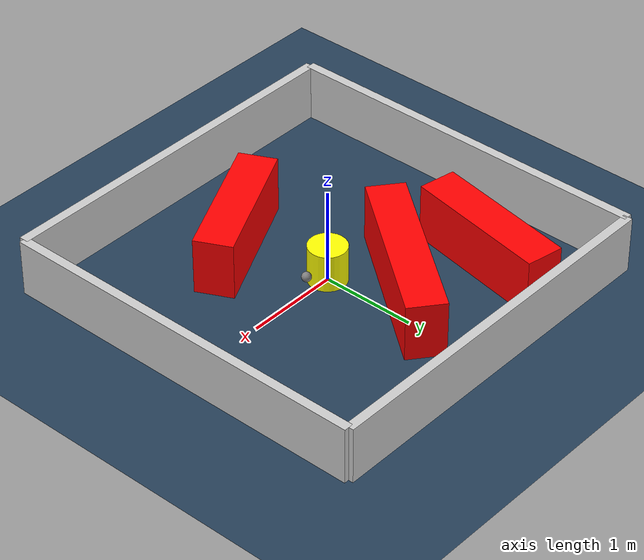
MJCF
<?xml version="1.0" ?>
<mujoco model="generated_environment">
  <option timestep="0.01" integrator="RK4" cone="elliptic"/>
  <default>
    <geom density="1"/>
  </default>
  <asset>
    <texture builtin="gradient" height="3072" rgb1="0.3 0.5 0.7" rgb2="0 0 0" type="skybox" width="512"/>
    <texture builtin="checker" height="300" mark="edge" markrgb="0.8 0.8 0.8" name="groundplane" rgb1="0.2 0.3 0.4" rgb2="0.1 0.2 0.3" type="2d" width="300"/>
    <material name="groundplane" reflectance="0.2" texrepeat="5 5" texture="groundplane" texuniform="true"/>
    <material name="robot" rgba="0.0 1.0 0.0 1"/>
  </asset>
  <worldbody>
    <light dir="0 0 -1" directional="true" pos="0 0 1.5"/>
    <geom condim="4" friction="1.0 0.005 0.001" material="groundplane" name="floor" size="0 0 0.05" type="plane"/>
    <body name="walls">
      <geom name="wall_1" condim="4" pos="-2.0 0.0 0.3" rgba="0.800000011920929 0.800000011920929 0.800000011920929 1.0" size="0.05 2.0 0.3" type="box"/>
      <geom name="wall_2" condim="4" pos="2.0 0.0 0.3" rgba="0.800000011920929 0.800000011920929 0.800000011920929 1.0" size="0.05 2.0 0.3" type="box"/>
      <geom name="wall_3" condim="4" pos="0.0 -2.0 0.3" rgba="0.800000011920929 0.800000011920929 0.800000011920929 1.0" size="2.0 0.05 0.3" type="box"/>
      <geom name="wall_4" condim="4" pos="0.0 2.0 0.3" rgba="0.800000011920929 0.800000011920929 0.800000011920929 1.0" size="2.0 0.05 0.3" type="box"/>
    </body>
    <body name="robot">
      <joint name="joint_x" type="slide" pos="0 0 0" axis="1 0 0"/>
      <joint name="joint_y" type="slide" pos="0 0 0" axis="0 1 0"/>
      <geom name="robot" type="sphere" pos="0.3 0.0 0.2" size="0.05" mass="5." friction="1.0 0.005 0.0001" condim="4" rgba="0.5 0.5 0.5 1.0"/>
      <site name="sensor_ball"/>
    </body>
    <body name="obstacle_movable_1">
      <geom name="obstacle_movable_1" condim="4" pos="0.0 0.0 0.2" euler="0 0 0.0" friction="1.0 0.005 0.001" rgba="1.0 1.0 0.0 1.0" size="0.2 0.2 0.0" type="cylinder" mass="0.1"/>
      <joint type="free"/>
    </body>
    <body name="obstacle_2_static">
      <geom name="obstacle_2_static" condim="4" pos="-1.1461834377476525 1.0237474988724389 0.3" euler="0 0 79.30452202925957" friction="1.0 0.005 0.001" rgba="1 0 0 1" size="0.7777029561148061 0.2 0.3" type="box"/>
    </body>
    <body name="obstacle_3_static">
      <geom name="obstacle_3_static" condim="4" pos="-0.3015053300027133 0.6972550797656336 0.3" euler="0 0 51.67245032259324" friction="1.0 0.005 0.001" rgba="1 0 0 1" size="0.9532300596587897 0.2 0.3" type="box"/>
    </body>
    <body name="obstacle_4_static">
      <geom name="obstacle_4_static" condim="4" pos="0.22270061842475775 -0.9650357867382429 0.3" euler="0 0 26.211800319377502" friction="1.0 0.005 0.001" rgba="1 0 0 1" size="0.7429659293645021 0.2 0.3" type="box"/>
    </body>
  </worldbody>
  <actuator>
    <motor name="actuator_x" joint="joint_x" gear="1" ctrlrange="-1 1"/>
    <motor name="actuator_y" joint="joint_y" gear="1" ctrlrange="-1 1"/>
  </actuator>
</mujoco>
